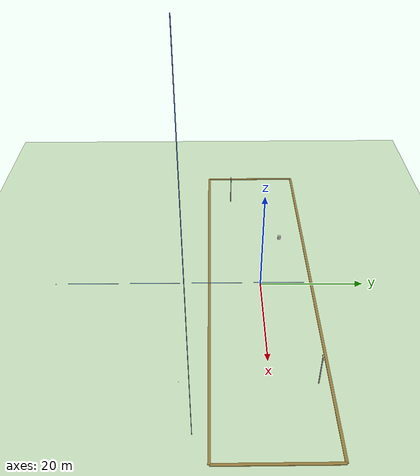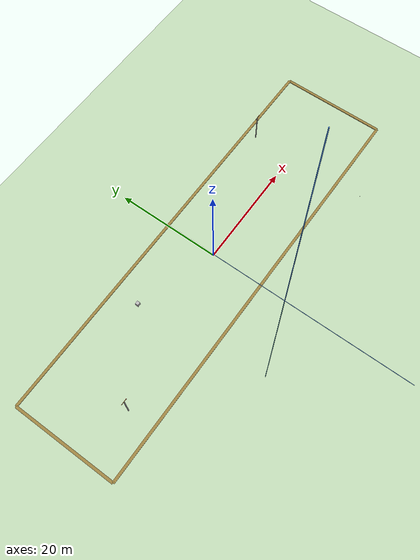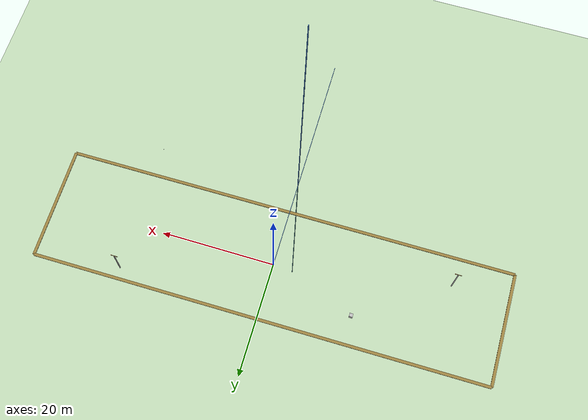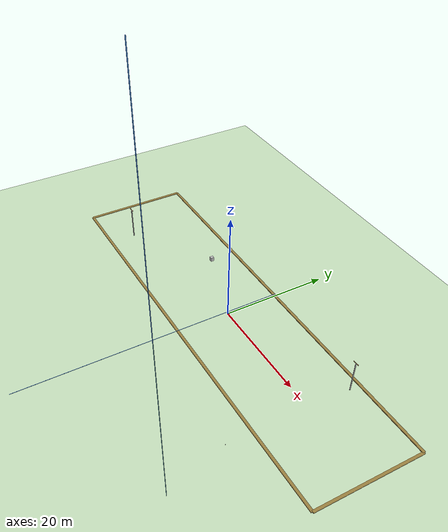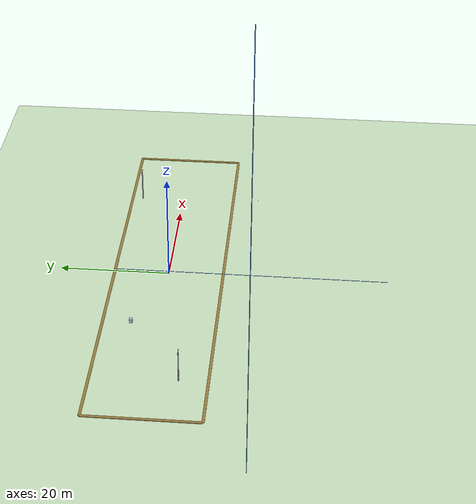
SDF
<?xml version="1.0" ?>
<sdf version="1.7">
  <!-- Cotton Field Main World - 日间棉花田仿真场景 -->
  <!-- 棉花种植无人机智巡仿真系统 -->
  <world name="cotton_field_world">

    <!-- 物理插件 -->
    <physics type="ode">
      <max_step_size>0.001</max_step_size>
      <real_time_factor>1.0</real_time_factor>
      <real_time_update_rate>1000</real_time_update_rate>
    </physics>

    <!-- 全局光源 -->
    <scene>
      <ambient>0.6 0.6 0.6 1</ambient>
      <background>0.7 0.8 1.0 1</background>
      <shadows>true</shadows>
      <grid>true</grid>
      <origin_visual>false</origin_visual>
    </scene>

    <!-- 太阳光 -->
    <light type="directional" name="sun">
      <cast_shadows>true</cast_shadows>
      <pose>100 0 200 0 0 0</pose>
      <diffuse>0.9 0.9 0.8 1</diffuse>
      <specular>0.1 0.1 0.1 1</specular>
      <attenuation range="1000"/>
      <direction>-0.5 0.1 -0.9</direction>
    </light>

    <!-- 环境光 -->
    <light type="ambient" name="ambient_light">
      <diffuse>0.4 0.4 0.45 1</diffuse>
      <specular>0.1 0.1 0.1 1</specular>
    </light>

    <!-- 地面 - 农田地形 -->
    <model name="ground_plane">
      <static>true</static>
      <link name="ground_link">
        <pose>0 0 -0.01 0 0 0</pose>
        <collision name="ground_collision">
          <geometry>
            <plane>
              <normal>0 0 1</normal>
              <size>500 500</size>
            </plane>
          </geometry>
          <surface>
            <friction>
              <ode>
                <mu>0.8</mu>
                <mu2>0.8</mu2>
              </ode>
            </friction>
          </surface>
        </collision>
        <visual name="ground_visual">
          <geometry>
            <plane>
              <normal>0 0 1</normal>
              <size>500 500</size>
            </plane>
          </geometry>
          <material>
            <ambient>0.35 0.55 0.15 1</ambient>
            <diffuse>0.4 0.6 0.2 1</diffuse>
            <specular>0.0 0.0 0.0 1</specular>
          </material>
        </visual>
      </link>
    </model>

    <!-- 棉花田块区域模型 -->
    <model name="cotton_field_zone_1">
      <static>true</static>
      <pose>0 0 0 0 0 0</pose>
      <link name="field_link">
        <!-- 田埂 -->
        <visual name="ridge_visual">
          <geometry>
            <box>
              <size>80 0.5 0.15</size>
            </box>
          </geometry>
          <material>
            <ambient>0.55 0.45 0.2 1</ambient>
            <diffuse>0.6 0.5 0.25 1</diffuse>
          </material>
          <pose>0 10 0.075 0 0 0</pose>
        </visual>
        <visual name="ridge_visual_2">
          <geometry>
            <box>
              <size>80 0.5 0.15</size>
            </box>
          </geometry>
          <material>
            <ambient>0.55 0.45 0.2 1</ambient>
            <diffuse>0.6 0.5 0.25 1</diffuse>
          </material>
          <pose>0 -10 0.075 0 0 0</pose>
        </visual>
        <visual name="ridge_visual_3">
          <geometry>
            <box>
              <size>0.5 20 0.15</size>
            </box>
          </geometry>
          <material>
            <ambient>0.55 0.45 0.2 1</ambient>
            <diffuse>0.6 0.5 0.25 1</diffuse>
          </material>
          <pose>40 0 0.075 0 0 0</pose>
        </visual>
        <visual name="ridge_visual_4">
          <geometry>
            <box>
              <size>0.5 20 0.15</size>
            </box>
          </geometry>
          <material>
            <ambient>0.55 0.45 0.2 1</ambient>
            <diffuse>0.6 0.5 0.25 1</diffuse>
          </material>
          <pose>-40 0 0.075 0 0 0</pose>
        </visual>
      </link>
    </model>

    <!-- 棉花植株模型（多个实例） -->
    <model name="cotton_plant_row_1">
      <static>true</static>
      <link name="link">
        <!-- 第1列棉花株 -->
        <pose>-15 5 0 0 0 0</pose>
        <visual name="plant_visual">
          <geometry>
            <mesh>
              <uri>model://cotton_plant/meshes/plant.dae</uri>
              <scale>1 1 1</scale>
            </mesh>
          </geometry>
        </visual>
      </link>
      <plugin name="plant_random_placer" filename="librandom_placer.so">
        <rows>20</rows>
        <cols>8</cols>
        <spacing_x>2.0</spacing_x>
        <spacing_y>2.5</spacing_y>
        <seed>42</seed>
      </plugin>
    </model>

    <!-- 电线杆障碍物 -->
    <model name="electric_pole_1">
      <static>true</static>
      <include>
        <uri>model://electric_pole</uri>
        <pose>25 8 0 0 0 0</pose>
        <name>pole_1</name>
      </include>
    </model>

    <model name="electric_pole_2">
      <static>true</static>
      <include>
        <uri>model://electric_pole</uri>
        <pose>-30 -5 0 0 0 0</pose>
        <name>pole_2</name>
      </include>
    </model>

    <!-- 灌溉管道 -->
    <model name="irrigation_main">
      <static>true</static>
      <include>
        <uri>model://irrigation_pipe</uri>
        <pose>0 -15 0 0 0 0</pose>
      </include>
    </model>

    <!-- 坐标系标记 -->
    <gui fullscreen='0'>
      <camera name='user_camera'>
        <pose>-30 -30 40 0 0.5 0.8</pose>
        <view_controller>orbit</view_controller>
      </camera>
    </gui>

    <!-- Gazebo ROS2 桥接插件 -->
    <plugin name="gazebo_ros_factory" filename="libgazebo_ros_factory.so"/>
    <plugin name="gazebo_ros_state" filename="libgazebo_ros_state.so"/>

  </world>
</sdf>

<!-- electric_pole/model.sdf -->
<!-- Electric Pole Model - 电线杆 Gazebo模型 -->
<sdf version="1.7">
  <model name="electric_pole">
    <static>true</static>
    <allow_auto_disable>true</allow_auto_disable>
    <link name="pole">
      <!-- 水泥杆 -->
      <collision name="pole_collision">
        <geometry><cylinder><radius>0.1</radius><length>6</length></cylinder></geometry>
        <pose>0 0 3 0 0 0</pose>
      </collision>
      <visual name="pole_visual">
        <geometry><cylinder><radius>0.1</radius><length>6</length></cylinder></geometry>
        <pose>0 0 3 0 0 0</pose>
        <material>
          <ambient>0.5 0.5 0.5 1</ambient>
          <diffuse>0.6 0.6 0.6 1</diffuse>
          <specular>0.1 0.1 0.1 1</specular>
        </material>
      </visual>
      <!-- 横担 -->
      <collision name="crossarm_collision">
        <geometry><box><size>1.2 0.08 0.08</size></box></geometry>
        <pose>0 0 6.2 0 0 0</pose>
      </collision>
      <visual name="crossarm_visual">
        <geometry><box><size>1.2 0.08 0.08</size></box></geometry>
        <pose>0 0 6.2 0 0 0</pose>
        <material><ambient>0.4 0.3 0.1 1</ambient><diffuse>0.5 0.4 0.2 1</diffuse></material>
      </visual>
      <!-- 绝缘子 -->
      <collision name="insulator_collision">
        <geometry><cylinder><radius>0.03</radius><length>0.15</length></cylinder></geometry>
        <pose>0.5 0 6.3 1.5708 0 0</pose>
      </collision>
      <visual name="insulator_visual">
        <geometry><cylinder><radius>0.03</radius><length>0.15</length></cylinder></geometry>
        <pose>0.5 0 6.3 1.5708 0 0</pose>
        <material><ambient>0.8 0.2 0.2 1</ambient><diffuse>0.9 0.3 0.3 1</diffuse></material>
      </visual>
    </link>
  </model>
</sdf>

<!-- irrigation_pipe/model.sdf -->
<!-- Irrigation Pipe Model - 灌溉管道Gazebo模型 -->
<sdf version="1.7">
  <model name="irrigation_pipe">
    <static>true</static>
    <allow_auto_disable>true</allow_auto_disable>
    <link name="pipe">
      <!-- 主干管道 -->
      <collision name="main_pipe_collision">
        <geometry><cylinder><radius>0.08</radius><length>100</length></cylinder></geometry>
        <pose>0 0 0.5 0 0 1.5708</pose>
      </collision>
      <visual name="main_pipe_visual">
        <geometry><cylinder><radius>0.08</radius><length>100</length></cylinder></geometry>
        <pose>0 0 0.5 0 0 1.5708</pose>
        <material>
          <ambient>0.2 0.4 0.7 1</ambient>
          <diffuse>0.25 0.5 0.8 1</diffuse>
          <specular>0.2 0.2 0.2 1</specular>
        </material>
      </visual>
      <!-- 支管道 -->
      <collision name="branch_collision">
        <geometry><cylinder><radius>0.04</radius><length>50</length></cylinder></geometry>
        <pose>0 0 0.5 1.5708 0 0</pose>
      </collision>
      <visual name="branch_visual">
        <geometry><cylinder><radius>0.04</radius><length>50</length></cylinder></geometry>
        <pose>0 0 0.5 1.5708 0 0</pose>
        <material><ambient>0.2 0.4 0.7 1</ambient><diffuse>0.25 0.5 0.8 1</diffuse></material>
      </visual>
      <!-- 喷头 -->
      <collision name="sprinkler_collision">
        <geometry><sphere><radius>0.06</radius></sphere></geometry>
        <pose>25 0 0.65 0 0 0</pose>
      </collision>
      <visual name="sprinkler_visual">
        <geometry><sphere><radius>0.06</radius></sphere></geometry>
        <pose>25 0 0.65 0 0 0</pose>
        <material><ambient>0.3 0.3 0.3 1</ambient><diffuse>0.4 0.4 0.4 1</diffuse></material>
      </visual>
    </link>
  </model>
</sdf>
